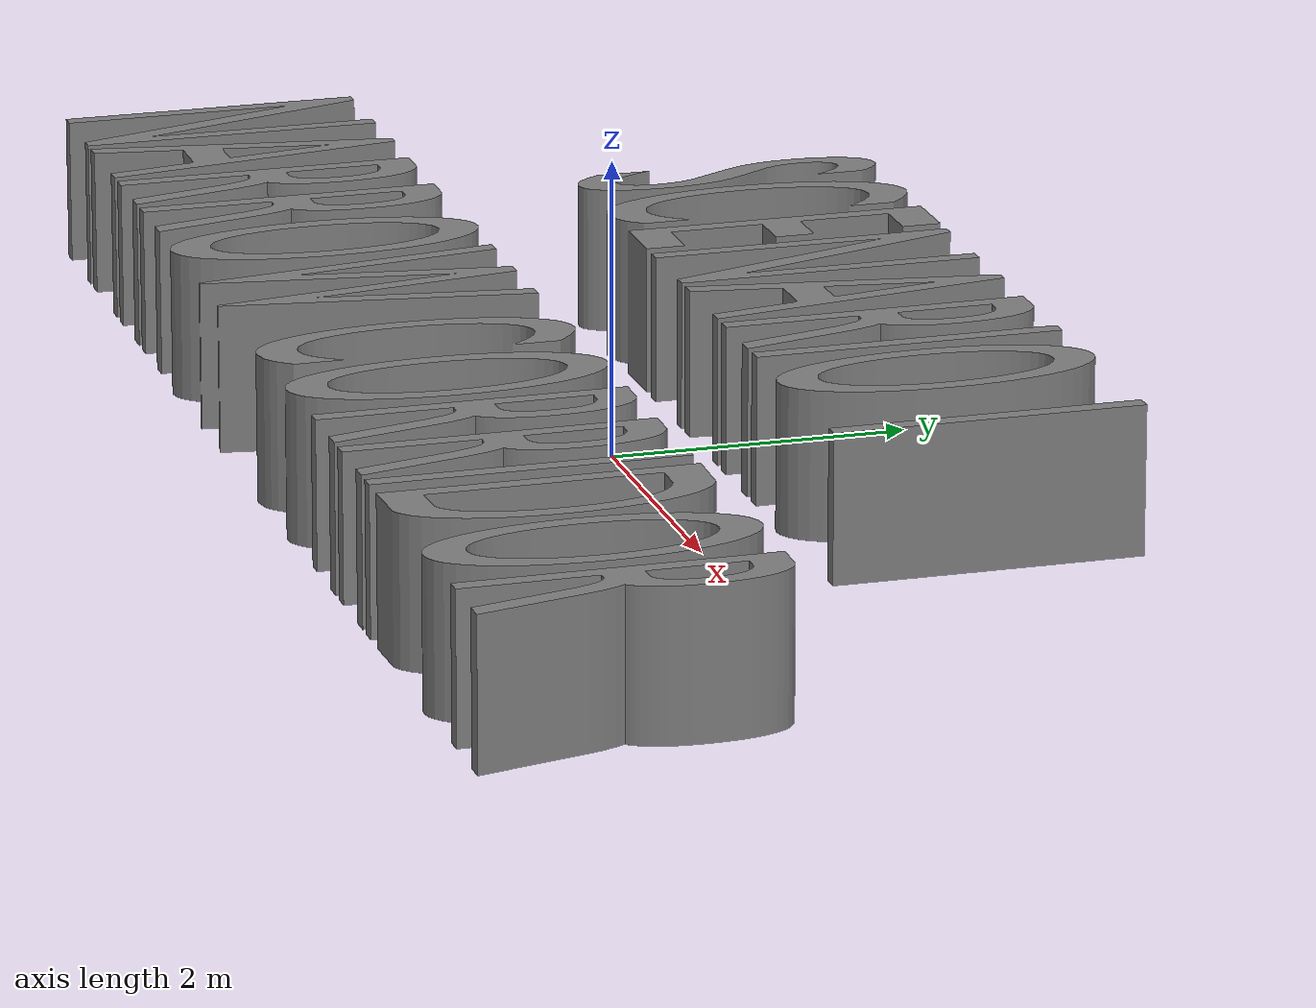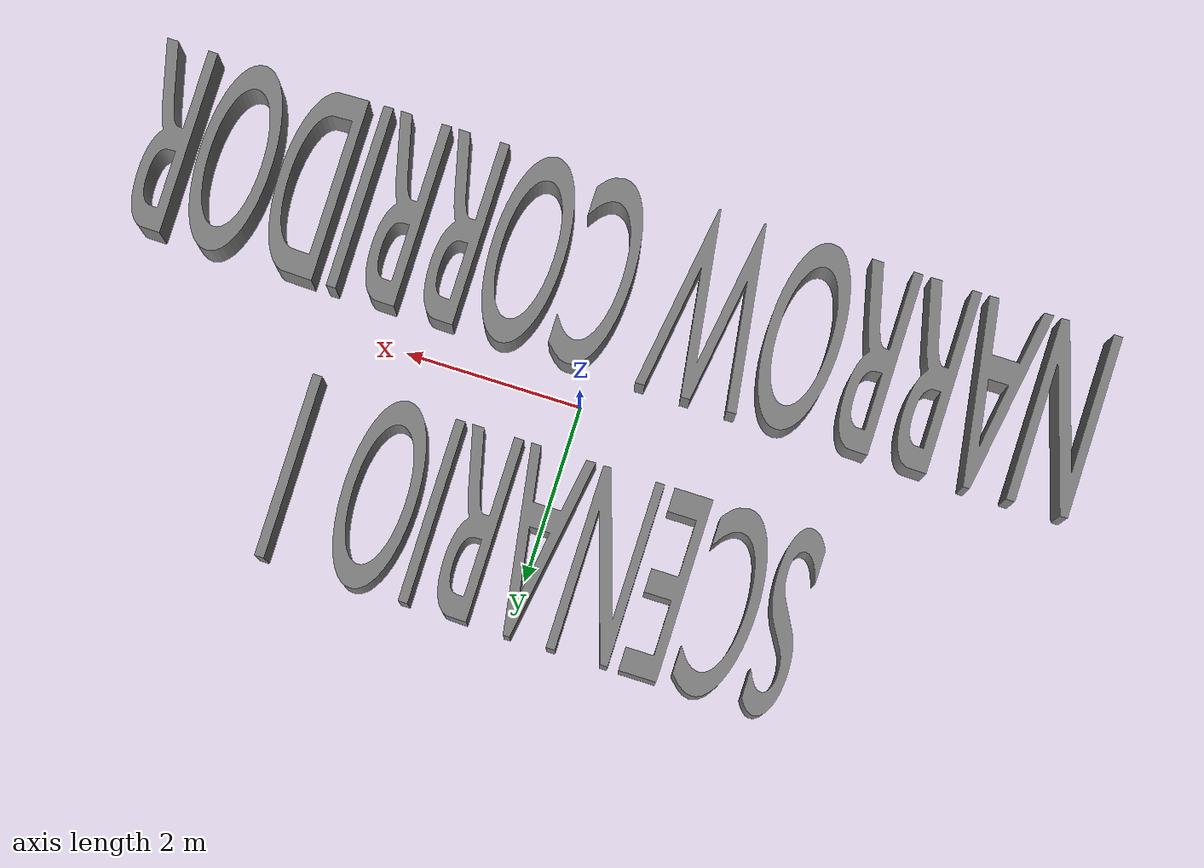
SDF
<?xml version="1.0" ?>
<sdf version="1.6">
  <model name="example">
    <static>true</static>
    <link name="link">
      <collision name="collision">
        <geometry>
          <mesh>
            <scale>1 1 1</scale>
            <uri>model://example/meshes/example.stl</uri>
          </mesh>
           <surface>
            <friction>
              <ode>
                <mu>1.2</mu>
                <mu2>1.2</mu2>
              </ode>
            </friction>
          </surface>
        </geometry>
      </collision>
      <visual name="visual">
        <geometry>
          <mesh>
            <scale>1 1 1</scale>
            <uri>model://example/meshes/example.dae</uri>
          </mesh>
        </geometry>
      </visual>
    </link>
  </model>
</sdf>
